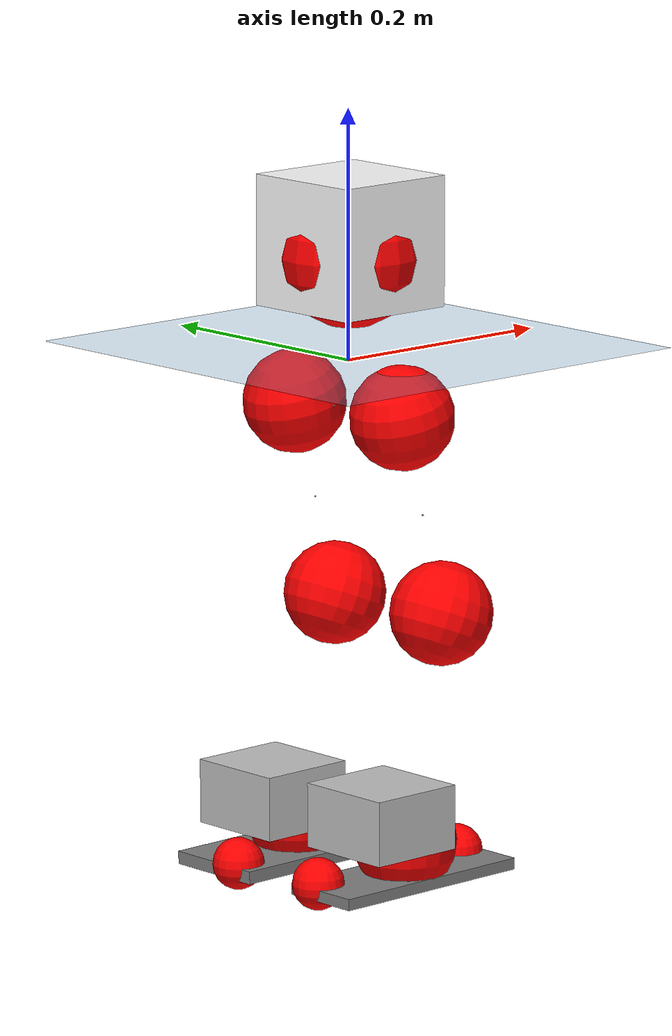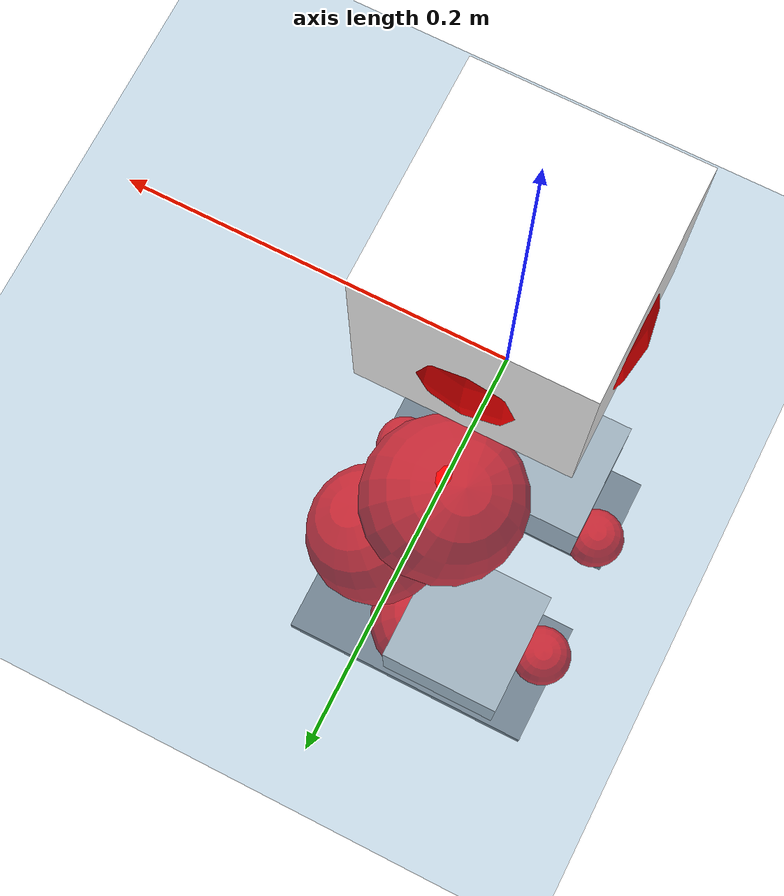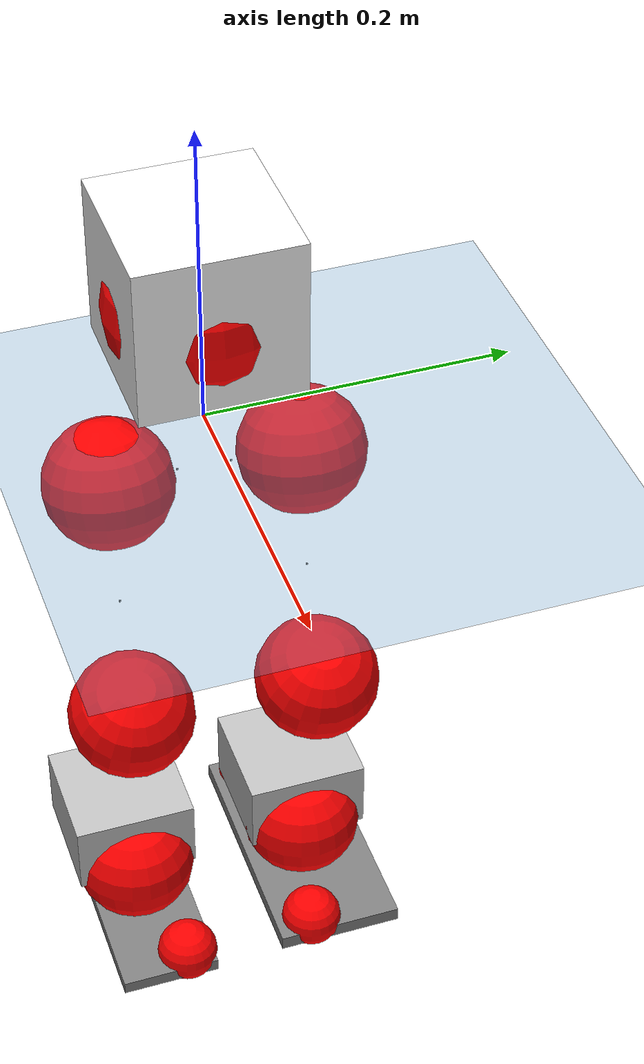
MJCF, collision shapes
<mujoco model="pi_12dof_release_v1">
  <compiler angle="radian" assetdir="assets" balanceinertia="true" inertiafromgeom="false"/>

  <option timestep="0.005" density="1.2" viscosity="2e-05"/>

  <size nkey="1"/>

  <visual>
    <quality shadowsize="8192"/>
    <map shadowclip="0.5"/>
  </visual>

  <default>
    <default class="/">
      <joint armature="0.01" damping="0.01" frictionloss="0.01"/>
      <geom contype="0" conaffinity="0" group="1" solref="-1000 -80"/>
      <site size="0.01 0.005 0.005" group="5"/>
      <general forcelimited="true" biastype="affine" gainprm="20" biasprm="0 -20 -0.5"/>
      <default class="foot">
        <geom size="0.0845 0.036 0.005" type="box" condim="6" group="4" priority="1" friction="0.9 0.2 0.2" solimp="0.015 1 0.005"/>
      </default>
      <default class="reward_collision_sphere">
        <geom group="5" rgba="1 0 0 1"/>
      </default>
    </default>
  </default>

  <asset>
    <texture type="skybox" colorspace="auto" name="//unnamed_texture_0" builtin="gradient" rgb1="0.95 0.95 0.95" rgb2="0.95 0.95 0.95" width="100" height="600"/>
    <texture type="2d" colorspace="auto" name="texplane" builtin="checker" rgb1="0.345 0.575 0.748" rgb2="0.345 0.575 0.748" markrgb="1 1 1" width="512" height="512"/>
    <material name="MatPlane" class="/" texture="texplane" texuniform="true" texrepeat="2 2" specular="0.9"/>
    <mesh name="baselink_1" class="/" file="baselink_1.STL"/>
    <mesh name="r_hip_pitch_link" class="/" file="r_hip_pitch_link.STL"/>
    <mesh name="r_hip_roll_link" class="/" file="r_hip_roll_link.STL"/>
    <mesh name="r_thigh_link" class="/" file="r_thigh_link.STL"/>
    <mesh name="r_calf_link" class="/" file="r_calf_link.STL"/>
    <mesh name="r_ankle_pitch_link" class="/" file="r_ankle_pitch_link.STL"/>
    <mesh name="r_ankle_roll_link" class="/" file="r_ankle_roll_link.STL"/>
    <mesh name="l_hip_pitch_link" class="/" file="l_hip_pitch_link.STL"/>
    <mesh name="l_hip_roll_link" class="/" file="l_hip_roll_link.STL"/>
    <mesh name="l_thigh_link" class="/" file="l_thigh_link.STL"/>
    <mesh name="l_calf_link" class="/" file="l_calf_link.STL"/>
    <mesh name="l_ankle_pitch_link" class="/" file="l_ankle_pitch_link.STL"/>
    <mesh name="l_ankle_roll_link" class="/" file="l_ankle_roll_link.STL"/>
  </asset>

  <worldbody>
    <geom name="floor" class="/" size="100 100 0.125" type="plane" group="0" material="MatPlane"/>
    <light name="toplight_shadow" class="/" pos="0 0 5" dir="0.0990148 0.0990148 -0.990148" type="directional" ambient="0.04 0.04 0.04" diffuse="0.55 0.55 0.55" specular="0.12 0.12 0.12"/>
    <light name="toplight_fill" class="/" pos="0 0 5" dir="0.0990148 0.0990148 -0.990148" type="directional" castshadow="false" ambient="0.04 0.04 0.04" diffuse="0.3 0.3 0.3" specular="0.08 0.08 0.08"/>
    <body name="trunk" pos="0.00028899 -0.00219496 0.000182617" quat="1 -1.99893e-05 3.4876e-05 2.3315e-05">
      <inertial pos="0.00175506 -0.0029668 0.0483122" quat="0.701593 0.00107086 0.0131441 0.712456" mass="2.4309" diaginertia="0.0163937 0.00346095 0.0101834"/>
      <joint name="//unnamed_joint_0" type="free"/>
      <geom name="//unnamed_geom_1" class="/" type="mesh" density="0" rgba="1 1 1 1" mesh="baselink_1"/>
      <geom name="//unnamed_geom_2" class="/" size="0.0522508 0.0522508 0.0522508" pos="0 0 0.0957581" type="box" rgba="1 1 1 1"/>
      <geom name="//unnamed_geom_3" class="reward_collision_sphere" size="0.0574759" pos="0 0 0.0837884"/>
      <site name="imu" class="/" pos="0.0103599 0.00442428 -0.0109348" size="0.0104502"/>
      <camera name="track" class="/" pos="0 -1.65619 0" quat="0.707107 0.707107 0 0" mode="trackcom"/>
      <camera name="ego_camera" class="/" pos="0.0832484 0 0.215456" quat="-0.5 -0.5 0.5 0.5"/>
      <body name="r_hip_pitch_link" pos="0.000822744 -0.0163118 -0.0369019" quat="0.992293 -0.000302731 -0.123908 -0.000694694">
        <inertial pos="0.00102522 -0.0459176 0.000952873" quat="-0.0189596 0.705954 -0.0284695 0.707431" mass="0.409099" diaginertia="0.000182632 3.67588e-05 0.000204893"/>
        <joint name="r_hip_pitch_joint" class="/" pos="0 0 0" axis="0.00662834 -0.999978 -0.000537822" stiffness="0.000418341" range="-1.75481 1.23283" armature="0.0105858" damping="0.0131177" frictionloss="0.0110091"/>
        <geom name="//unnamed_geom_4" class="/" type="mesh" density="0" rgba="0.75294 0.75294 0.75294 1" mesh="r_hip_pitch_link"/>
        <geom name="//unnamed_geom_5" class="/" size="0.000522508 0.000522508 0.000522508" type="box" rgba="0.75294 0.75294 0.75294 1"/>
        <body name="r_hip_roll_link" pos="-0.000948338 -0.0437746 -0.000285201" quat="1 -0.000326744 -0.000781134 -0.000523763">
          <inertial pos="0.00084286 0.000993099 -0.0737703" quat="0.697244 -0.0800236 -0.0875404 0.706954" mass="0.443349" diaginertia="0.000567519 0.00010933 0.000321499"/>
          <joint name="r_hip_roll_joint" class="/" pos="0 0 0" axis="-0.999978 0.00565975 -0.00342445" range="-0.122609 0.544692" armature="0.00956056" damping="0.0102357" frictionloss="0.0102056"/>
          <geom name="//unnamed_geom_6" class="/" type="mesh" density="0" rgba="0.75294 0.75294 0.75294 1" mesh="r_hip_roll_link"/>
          <geom name="//unnamed_geom_7" class="/" size="0.000522508 0.000522508 0.000522508" type="box" rgba="0.75294 0.75294 0.75294 1"/>
          <geom name="//unnamed_geom_8" class="reward_collision_sphere" size="0.0418007"/>
          <body name="r_thigh_link" pos="-0.000535175 -0.00211012 -0.0828145" quat="1 -0.000514899 4.11625e-05 2.83238e-07">
            <inertial pos="0.00224196 0.000604164 -0.0594781" quat="0.737389 0.675467 -0.00116932 0.00054628" mass="0.128573" diaginertia="0.000204145 3.79542e-05 0.000136955"/>
            <joint name="r_thigh_joint" class="/" pos="0 0 0" axis="-0.000330828 0.00538902 -0.999985" range="-0.337033 0.59826" armature="0.0105577" damping="0.00610172" frictionloss="0.0103502"/>
            <geom name="//unnamed_geom_9" class="/" type="mesh" density="0" rgba="0.75294 0.75294 0.75294 1" mesh="r_thigh_link"/>
            <geom name="//unnamed_geom_10" class="/" size="0.000522508 0.000522508 0.000522508" type="box" rgba="0.75294 0.75294 0.75294 1"/>
            <body name="r_calf_link" pos="-0.00167913 -0.00130382 -0.084219" quat="0.947621 9.13389e-05 0.319396 -9.34907e-05">
              <inertial pos="-0.000103542 -0.00187689 -0.0846097" quat="0.999974 -0.00183412 0.000330506 0.00694693" mass="0.901483" diaginertia="0.00602091 0.00132319 0.000442698"/>
              <joint name="r_calf_joint" class="/" pos="0 0 0" axis="-0.00425204 -0.999988 -0.00239659" range="-1.59919 0.659768" armature="0.0110165" damping="0.00988029" frictionloss="0.0106482"/>
              <geom name="//unnamed_geom_11" class="/" type="mesh" density="0" rgba="0.75294 0.75294 0.75294 1" mesh="r_calf_link"/>
              <geom name="//unnamed_geom_12" class="/" size="0.000522508 0.000522508 0.000522508" type="box" rgba="0.75294 0.75294 0.75294 1"/>
              <geom name="//unnamed_geom_13" class="reward_collision_sphere" size="0.0418007"/>
              <body name="r_ankle_pitch_link" pos="0.00325384 0.00295002 -0.16687" quat="0.980066 -2.71225e-05 -0.198671 7.54913e-06">
                <inertial pos="0.00476495 0.000379017 -0.000494902" quat="0.00666646 0.70751 0.00125224 0.706671" mass="0.211639" diaginertia="0.000536266 8.89146e-05 0.000305105"/>
                <joint name="r_ankle_pitch_joint" class="/" pos="0 0 0" axis="0.00184272 -0.999897 -0.014249" range="-1.29229 0.554958" armature="0.0107041" damping="0.0168206" frictionloss="0.0107529"/>
                <geom name="//unnamed_geom_14" class="/" type="mesh" density="0" rgba="0.75294 0.75294 0.75294 1" mesh="r_ankle_pitch_link"/>
                <geom name="//unnamed_geom_15" class="/" size="0.0407556 0.0418007 0.0261254" type="box" rgba="0.75294 0.75294 0.75294 1"/>
                <body name="r_ankle_roll_link" pos="0.0821548 0.00143923 -0.00137416" quat="0.999999 -0.000819473 -0.000961268 0.000316777">
                  <inertial pos="-0.0268021 -0.000242499 -0.0156988" quat="0.556599 0.429229 0.433509 0.563942" mass="0.594436" diaginertia="0.00188443 0.000402383 0.000689405"/>
                  <joint name="r_ankle_roll_joint" class="/" pos="0 0 0" axis="-0.999999 0.00113298 -0.00083443" range="-0.20378 0.147114" armature="0.0102614" damping="0.0118748" frictionloss="0.0101915"/>
                  <geom name="//unnamed_geom_16" class="/" type="mesh" density="0" rgba="0.75294 0.75294 0.75294 1" mesh="r_ankle_roll_link"/>
                  <geom name="//unnamed_geom_17" class="/" type="mesh" rgba="0.75294 0.75294 0.75294 1" mesh="r_ankle_roll_link"/>
                  <geom name="right_foot" class="foot" size="0.0896246 0.0335871 0.00464719" pos="-0.0566089 0 -0.052667"/>
                  <geom name="//unnamed_geom_19" class="reward_collision_sphere" size="0.0418007" pos="-0.0554989 0 -0.0239395"/>
                  <geom name="//unnamed_geom_20" class="reward_collision_sphere" size="0.0209003" pos="0.0166497 0.0165619 -0.0478791"/>
                  <geom name="//unnamed_geom_21" class="reward_collision_sphere" size="0.0209003" pos="-0.133197 0.0165619 -0.0478791"/>
                  <site name="right_foot" class="foot" pos="-0.0566089 0 -0.052667" size="0.0104502"/>
                </body>
              </body>
            </body>
          </body>
        </body>
      </body>
      <body name="l_hip_pitch_link" pos="4.36364e-05 0.0187622 -0.0394526" quat="0.992171 0.000239445 -0.124887 0.00022528">
        <inertial pos="0.000848039 0.0421563 -5.43596e-07" quat="-0.0423505 0.704642 0.0325413 0.70755" mass="0.4381" diaginertia="0.000215693 4.08386e-05 0.000247856"/>
        <joint name="l_hip_pitch_joint" class="/" pos="0 0 0" axis="-1.79313e-06 1 5.06714e-05" stiffness="0.00800973" range="-1.24913 1.75539" armature="0.010088" damping="0" frictionloss="0.011286"/>
        <geom name="//unnamed_geom_22" class="/" type="mesh" density="0" rgba="0.75294 0.75294 0.75294 1" mesh="l_hip_pitch_link"/>
        <geom name="//unnamed_geom_23" class="/" size="0.000522508 0.000522508 0.000522508" type="box" rgba="0.75294 0.75294 0.75294 1"/>
        <body name="l_hip_roll_link" pos="-0.000726949 0.0465469 -0.00251585" quat="1 0.000194032 -0.000173487 -8.94975e-05">
          <inertial pos="-0.00202493 -0.000146518 -0.0756977" quat="0.699459 -0.0762558 -0.0731996 0.706813" mass="0.454681" diaginertia="0.000564917 0.000107051 0.000312899"/>
          <joint name="l_hip_roll_joint" class="/" pos="0 0 0" axis="-0.99996 -0.00862116 -0.00253152" range="-0.554917 0.123649" armature="0.0116691" damping="0.00310627" frictionloss="0.0101648"/>
          <geom name="//unnamed_geom_24" class="/" type="mesh" density="0" rgba="0.75294 0.75294 0.75294 1" mesh="l_hip_roll_link"/>
          <geom name="//unnamed_geom_25" class="/" size="0.000522508 0.000522508 0.000522508" type="box" rgba="0.75294 0.75294 0.75294 1"/>
          <geom name="//unnamed_geom_26" class="reward_collision_sphere" size="0.0418007"/>
          <body name="l_thigh_link" pos="-0.0011782 -0.00292526 -0.082696" quat="1 -0.000414415 -7.14172e-05 0.000190287">
            <inertial pos="6.07475e-06 -0.00130116 -0.0556348" quat="0.675927 0.736964 0.00140237 -0.00222618" mass="0.132425" diaginertia="0.000220439 3.71333e-05 0.000144729"/>
            <joint name="l_thigh_joint" class="/" pos="0 0 0" axis="-0.000834935 0.00090153 -0.999999" range="-0.609245 0.300851" armature="0.00974215" damping="0.00724718" frictionloss="0.0103395"/>
            <geom name="//unnamed_geom_27" class="/" type="mesh" density="0" rgba="0.75294 0.75294 0.75294 1" mesh="l_thigh_link"/>
            <geom name="//unnamed_geom_28" class="/" size="0.000522508 0.000522508 0.000522508" type="box" rgba="0.75294 0.75294 0.75294 1"/>
            <body name="l_calf_link" pos="0.000209692 -3.52802e-05 -0.084698" quat="0.948024 -0.000347941 0.318199 -3.07547e-05">
              <inertial pos="-0.000582265 0.00501543 -0.0857919" quat="0.999964 0.00507128 -0.00510424 0.00455968" mass="0.945788" diaginertia="0.00615766 0.00136899 0.000448419"/>
              <joint name="l_calf_joint" class="/" pos="0 0 0" axis="-0.00584338 0.999966 -0.00575374" range="-0.670913 1.66085" armature="0.00993794" damping="0.0031708" frictionloss="0.0100859"/>
              <geom name="//unnamed_geom_29" class="/" type="mesh" density="0" rgba="0.75294 0.75294 0.75294 1" mesh="l_calf_link"/>
              <geom name="//unnamed_geom_30" class="/" size="0.000522508 0.000522508 0.000522508" type="box" rgba="0.75294 0.75294 0.75294 1"/>
              <geom name="//unnamed_geom_31" class="reward_collision_sphere" size="0.0418007"/>
              <body name="l_ankle_pitch_link" pos="-0.000204113 0.00342384 -0.167769" quat="0.979969 -0.000361511 -0.199145 -0.00120634">
                <inertial pos="0.00518989 -0.00339953 0.000733071" quat="0.00122147 0.705078 -0.000397916 0.709129" mass="0.199377" diaginertia="0.000512801 8.56693e-05 0.000290179"/>
                <joint name="l_ankle_pitch_joint" class="/" pos="0 0 0" axis="0.00180939 0.999998 -6.39367e-05" range="-0.554392 1.33437" armature="0.0104436" damping="0.00256705" frictionloss="0.01043"/>
                <geom name="//unnamed_geom_32" class="/" type="mesh" density="0" rgba="0.75294 0.75294 0.75294 1" mesh="l_ankle_pitch_link"/>
                <geom name="//unnamed_geom_33" class="/" size="0.0407556 0.0418007 0.0261254" type="box" rgba="0.75294 0.75294 0.75294 1"/>
                <body name="l_ankle_roll_link" pos="0.0811642 -0.000315838 0.00128227" quat="1 -8.98266e-05 2.42386e-05 -8.27627e-05">
                  <inertial pos="-0.0241889 -0.000627555 -0.0165251" quat="0.560457 0.428856 0.435628 0.558748" mass="0.58763" diaginertia="0.00196801 0.000405939 0.0006865"/>
                  <joint name="l_ankle_roll_joint" class="/" pos="0 0 0" axis="-0.999909 -0.0100941 -0.00895183" range="-0.0993047 0.112198" armature="0.0117873" damping="0.0239938" frictionloss="0.00912978"/>
                  <geom name="//unnamed_geom_34" class="/" type="mesh" density="0" rgba="0.75294 0.75294 0.75294 1" mesh="l_ankle_roll_link"/>
                  <geom name="//unnamed_geom_35" class="/" type="mesh" rgba="0.75294 0.75294 0.75294 1" mesh="l_ankle_roll_link"/>
                  <geom name="left_foot" class="foot" size="0.0883543 0.0429911 0.00522366" pos="-0.0566089 0 -0.052667"/>
                  <geom name="//unnamed_geom_37" class="reward_collision_sphere" size="0.0418007" pos="-0.0554989 0 -0.0239395"/>
                  <geom name="//unnamed_geom_38" class="reward_collision_sphere" size="0.0209003" pos="0.0166497 -0.0165619 -0.0478791"/>
                  <geom name="//unnamed_geom_39" class="reward_collision_sphere" size="0.0209003" pos="-0.133197 -0.0165619 -0.0478791"/>
                  <site name="left_foot" class="foot" pos="-0.0566089 0 -0.052667" size="0.0104502"/>
                </body>
              </body>
            </body>
          </body>
        </body>
      </body>
    </body>
  </worldbody>

  <contact>
    <pair class="/" geom1="floor" geom2="right_foot" name="//unnamed_contact_1"/>
    <pair class="/" geom1="floor" geom2="left_foot" name="//unnamed_contact_0"/>
  </contact>

  <actuator>
    <general name="r_hip_pitch_joint" class="/" joint="r_hip_pitch_joint" forcerange="-22.8447 22.8447" gainprm="20.4001" biasprm="0 -20.4001 -0.531416"/>
    <general name="r_hip_roll_joint" class="/" joint="r_hip_roll_joint" forcerange="-22.1433 22.1433" gainprm="20.4001" biasprm="0 -20.4001 -0.531416"/>
    <general name="r_thigh_joint" class="/" joint="r_thigh_joint" forcerange="-23.3894 23.3894" gainprm="20.4001" biasprm="0 -20.4001 -0.531416"/>
    <general name="r_calf_joint" class="/" joint="r_calf_joint" forcerange="-19.7688 19.7688" gainprm="20.4001" biasprm="0 -20.4001 -0.531416"/>
    <general name="r_ankle_pitch_joint" class="/" joint="r_ankle_pitch_joint" forcerange="-24.1523 24.1523" gainprm="20.4001" biasprm="0 -20.4001 -0.531416"/>
    <general name="r_ankle_roll_joint" class="/" joint="r_ankle_roll_joint" forcerange="-24.1612 24.1612" gainprm="20.4001" biasprm="0 -20.4001 -0.531416"/>
    <general name="l_hip_pitch_joint" class="/" joint="l_hip_pitch_joint" forcerange="-24.0863 24.0863" gainprm="20.4001" biasprm="0 -20.4001 -0.531416"/>
    <general name="l_hip_roll_joint" class="/" joint="l_hip_roll_joint" forcerange="-20.6355 20.6355" gainprm="20.4001" biasprm="0 -20.4001 -0.531416"/>
    <general name="l_thigh_joint" class="/" joint="l_thigh_joint" forcerange="-22.7105 22.7105" gainprm="20.4001" biasprm="0 -20.4001 -0.531416"/>
    <general name="l_calf_joint" class="/" joint="l_calf_joint" forcerange="-24.1547 24.1547" gainprm="20.4001" biasprm="0 -20.4001 -0.531416"/>
    <general name="l_ankle_pitch_joint" class="/" joint="l_ankle_pitch_joint" forcerange="-24.1499 24.1499" gainprm="20.4001" biasprm="0 -20.4001 -0.531416"/>
    <general name="l_ankle_roll_joint" class="/" joint="l_ankle_roll_joint" forcerange="-23.1863 23.1863" gainprm="20.4001" biasprm="0 -20.4001 -0.531416"/>
  </actuator>

  <sensor>
    <gyro site="imu" name="imu_angular_velocity"/>
    <velocimeter site="imu" name="imu_linear_velocity"/>
    <framelinvel objtype="site" objname="left_foot" name="left_foot_global_linear_velocity"/>
    <framelinvel objtype="site" objname="right_foot" name="right_foot_global_linear_velocity"/>
  </sensor>

  <keyframe>
    <key name="home" qpos="0 0 0.291 1 0 0 0 0.4 0 0 -0.8 0.4 0 -0.4 0 0 0.8 -0.4 0"/>
  </keyframe>
</mujoco>
